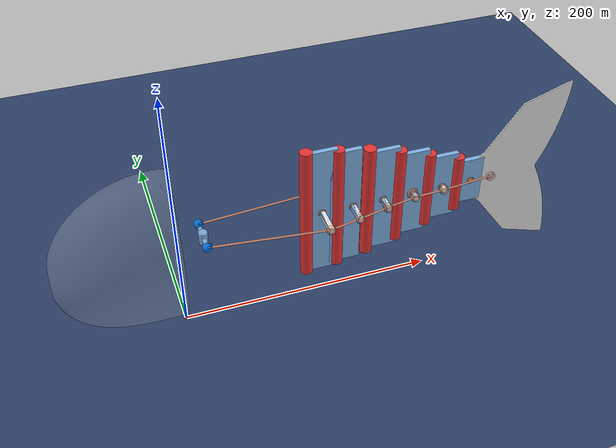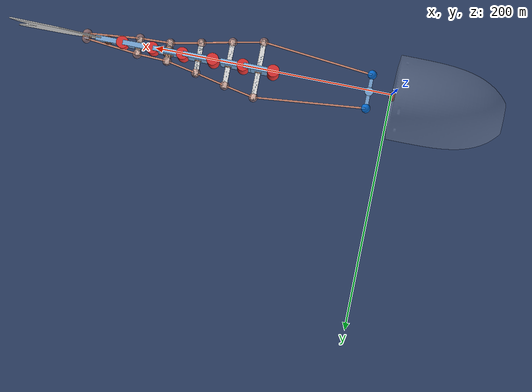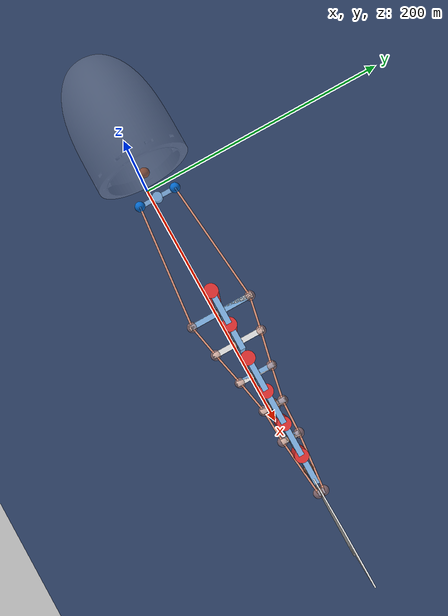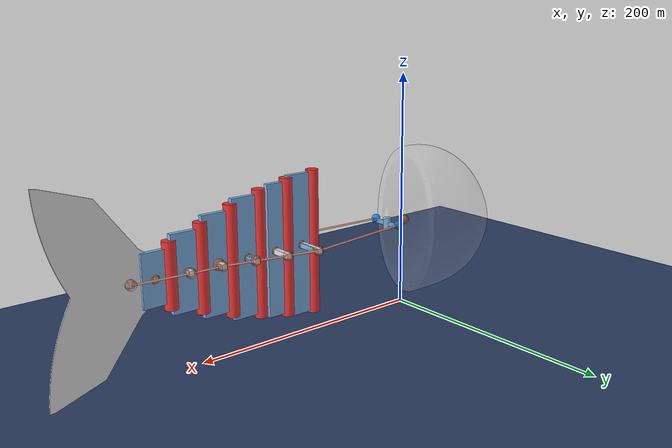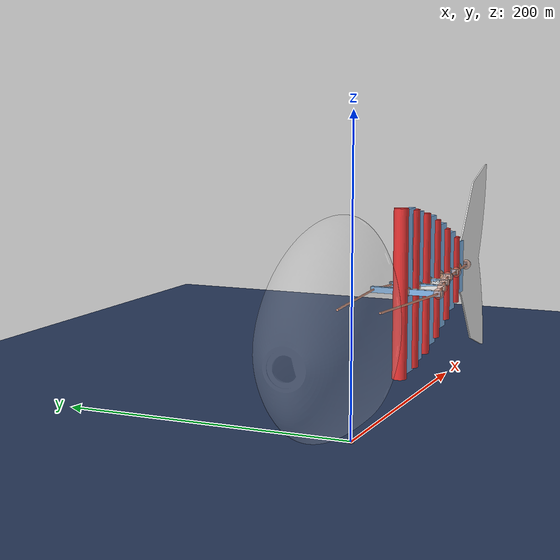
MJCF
<!--Creates a tendon fish based on Mike Yan Michelis' design.-->
<!-- Builds a life-sized fish-->
<!--As of now, the forces aren't super accurate to real life -as well as the masses- so that will be the next step, along with making the simulation progress faster-->

<mujoco model="tendonFish">
<option gravity="0 0 0" density="1000" viscosity="0.0013" integrator="implicitfast" timestep="0.001" iterations="100" solver="Newton" tolerance="1e-15" ls_tolerance="1e-9" noslip_tolerance="1e-9" o_solimp="0 0.01 0.01 0.1 2">
        <!--Prev timestep was .001-->
        <flag contact="enable"/>
    </option>

    <visual>
        <global offheight="2160" offwidth="3840"/>
        <rgba haze=".3 .3 .3 1"/>
    </visual>

    <asset>
        <texture type="skybox" builtin="gradient" rgb1="0.6 0.6 0.6" rgb2="0 0 0" width="512" height="512"/>
        <texture name="texplane" type="2d" builtin="checker" rgb1=".15 .2 .35" rgb2=".2 .3 .45" width="512" height="512" mark="cross" markrgb=".8 .8 .8"/>
        <material name="matplane" reflectance="0.3" texture="texplane" texrepeat="10 10" texuniform="true"/>
        <mesh name="tailMesh" file="C:\Users\15405\OneDrive\Desktop\Career\ETHZ\ETHZ Work\mujoco-3.3.2-windows-x86_64\model\mesh\tailV2.STL" scale="1 1 1" />
        <mesh name="headMesh" file="C:\Users\15405\OneDrive\Desktop\Career\ETHZ\ETHZ Work\mujoco-3.3.2-windows-x86_64\model\mesh\headExternal.STL" scale="1 -1 1" />
        <mesh name="planetaryGearBox" file="C:\Users\15405\OneDrive\Desktop\Career\ETHZ\ETHZ Work\mujoco-3.3.2-windows-x86_64\model\mesh\sunGear.STL" scale="1 1 1" />

        <material name="acrylic" rgba=".9 .9 .9 0.2"/>
        <material name="alu" reflectance="0.9" specular="0.9" shininess="0.9" rgba=".7 .7 .7 1"/>
        <material name="marker" rgba=".9 .4 .1 .5"/>
        <!--density="1240" maybe change back the objects with PLA to alu or acrylic-->
    </asset>

    <!--Play with different tendon widths-->
    <default>
        <joint type="hinge" pos="0 0 0" axis="0 0 1" range="-80 80" stiffness="1" damping="0.1"/>
        <!--originally stifness was .65 damping was 0-->
        <geom fluidcoef="0.1 0.1 0.1 2.0 1.0" condim="1"/>
        <tendon width=".75" rgba=".9 .6 .5 1" stiffness="5" damping="1"/>
        <!-- tendon prev stiffness=20 and damp=10-->
    </default>

    <worldbody>
        <camera name="fixed" pos="0.4 -1.2 1.2" xyaxes="1 0 0 0 1 1"/>
        <camera name="fixedTop" pos="-0.75 0 1.5" xyaxes="0 -1 0 1 0 0.75"/>
        <camera name="fixedDiag" pos="0.75 -1 1" xyaxes="0.8 0.6 0 -0.4 0.5 0.75"/>
        <camera pos="0.625 -0.592 0.720" xyaxes="0.758 0.653 -0.000 -0.468 0.544 0.697"/>

        <geom name="floor" pos="0 0 -0.2" size="0 0 1" type="plane" material="matplane"/>
        <geom name="ceiling" pos="0 0 0.2" size="0 0 1" zaxis="0 0 -1" type="plane" rgba=".7 .1 .1 0"/>
        <light directional="true" diffuse=".8 .8 .8" specular=".2 .2 .2" pos="0 0 5" dir="0 0 -1"/>

        <body pos="0 0 0">
            <joint name="headX" pos="0 0 0" type="slide" axis="1 0 0" stiffness="0" damping="0"/>
            <site name="COM" pos="0 0 0" size="2" material="marker"/>
            <geom name="head_mesh" type="mesh" mesh="headMesh" pos="0 -37.5 145" material="acrylic" density="11.8" fluidshape="ellipsoid" quat="0 0 0.7071 0.7071" contype="1" conaffinity="1" />

            <site name="marker0" pos="0 3.5 75" size="3.75" material="marker"/>

            <body pos="20 3.25 75" name="motor">
                <!-- Slide joint along x-axis with limits -->
                <joint name="motor_rotate" type="hinge" axis="0 0 1" pos="0 0 0" limited="false" stiffness="0" damping="0"/>
                <!-- Rotating body similar to the gearbox in the fish -->
                <geom name="motorSlider" type="cylinder" pos="0 0 0" size="3.5 5" rgba="0.59 0.8 1 .8" mass=".05" contype="1" conaffinity="1" />
                <geom name="motorRods" type="box" pos="0 0 0" size="1.5 14 1.5" rgba="0.59 0.8 1 .8" mass=".05" contype="1" conaffinity="1" density="1250"/>
                <site name="bodyLeft" pos="0 -14 1.5" size="3.75" rgba="0.031 0.509 0.96 .8"/>
                <site name="bodyRight" pos="0 14 1.5" size="3.75" rgba="0.031 0.509 0.96 .8"/>
            </body>

            <!--6 different bodies resemble the 6 connection points of the fish tail-->
            <body pos="100 3.25 0" name="firstPeg">
                <geom name="joint0" type="cylinder" pos="0 0 75" size="5 58" rgba=".9 .2 .2 1" mass="0" contype="0" conaffinity="0"/>
                <joint name="joint0"/>
                <geom name="joint0-tail0" type="box" pos="12 0 75" size="2 25 2" rgba=".9 .9 .9 1" mass="0.001" fluidshape="ellipsoid" contype="0" conaffinity="0"/>
                <geom name="tail0" type="box" pos="12 0 75" size="12.5 2 56.5" rgba=".5 .7 .9 1" mass=".01" fluidshape="ellipsoid" contype="0" conaffinity="0"/>
                <site name="marker4" pos="12 0 75" size="3.75" material="marker"/>

                <geom name="tail0left" type="box" pos="12 12.5 75" size="2 12.5 2" rgba=".5 .7 .9 1" mass=".01" fluidshape="ellipsoid" contype="0" conaffinity="0"/>
                <geom name="tail0right" type="box" pos="12 -12.5 75" size="2 12.5 2" rgba=".5 .7 .9 1" mass="0.01" fluidshape="ellipsoid" contype="0" conaffinity="0"/>
                <site name="tail0left" pos="12 -23 75" size="3.75" rgba=".9 .6 .5 .5"/>
                <site name="tail0right" pos="12 23 75" size="3.75" rgba=".9 .6 .5 .5"/>

                <body pos="25 0 0" name="secondPeg">
                    <geom name="joint1" type="cylinder" pos="0 0 75" size="5 55" rgba=".9 .2 .2 1" mass="0" contype="0" conaffinity="0"/>
                    <joint name="joint1"/>
                    <geom name="joint1-tail1" type="box" pos="12 0 75" size="2 20 2" rgba=".9 .9 .9 1" mass="0.001" fluidshape="ellipsoid" contype="0" conaffinity="0"/>
                    <geom name="tail1" type="box" pos="6 0 75" size="12.5 2 52.5" rgba=".5 .7 .9 1" mass="0.01" fluidshape="ellipsoid" contype="0" conaffinity="0"/>
                    <site name="marker5" pos="12 0 75" size="3.75" material="marker"/>

                    <geom name="tail1left" type="box" pos="12 10 75" size="2 10 2" rgba=".5 .7 .9 1" mass="0.01" fluidshape="ellipsoid" contype="0" conaffinity="0"/>
                    <geom name="tail1right" type="box" pos="12 -10 75" size="2 10 2" rgba=".5 .7 .9 1" mass="0.01" fluidshape="ellipsoid" contype="0" conaffinity="0"/>
                    <site name="tail1left" pos="12 -18 75" size="3.75" rgba=".9 .6 .5 .5"/>
                    <site name="tail1right" pos="12 18 75" size="3.75" rgba=".9 .6 .5 .5"/>

                    <body pos="25 0 0" name="thirdPeg">
                        <geom name="joint2" type="cylinder" pos=" 0 0 75" size="5 50" rgba=".9 .2 .2 1" mass="0" contype="0" conaffinity="0"/>
                        <joint name="joint2"/>
                        <geom name="joint2-tail2" type="box" pos="12 0 75" size="2 15 2" rgba=".9 .9 .9 1" mass="0.001" fluidshape="ellipsoid" contype="0" conaffinity="0"/>
                        <geom name="tail2" type="box" pos="12 0 75" size="12.5 2 46.5" rgba=".5 .7 .9 1" mass="0.01" fluidshape="ellipsoid" contype="0" conaffinity="0"/>
                        <site name="marker6" pos="12 0 75" size="3.75" material="marker"/>

                        <geom name="tail2left" type="box" pos="12 7.5 75" size="2 7.5 2" rgba=".5 .7 .9 1" mass="0.01" fluidshape="ellipsoid" contype="0" conaffinity="0"/>
                        <geom name="tail2right" type="box" pos="12 -7.5 75" size="2 7.5 2" rgba=".5 .7 .9 1" mass="0.01" fluidshape="ellipsoid" contype="0" conaffinity="0"/>
                        <site name="tail2left" pos="12 -12.5 75" size="3.75" rgba=".9 .6 .5 .5"/>
                        <site name="tail2right" pos="12 12.5 75" size="3.75" rgba=".9 .6 .5 .5"/>

                        <body pos="25 0 0" name="fourthPeg">
                            <geom name="joint3" type="cylinder" pos=" 0 0 75" size="5 43" rgba=".9 .2 .2 1" mass="0" contype="0" conaffinity="0"/>
                            <joint name="joint3"/>
                            <geom name="joint3-tail3" type="box" pos="12 0 75" size="2 10 2" rgba=".9 .9 .9 1" mass="0.001" fluidshape="ellipsoid" contype="0" conaffinity="0"/>
                            <geom name="tail3" type="box" pos="12 0 75" size="12.5 2 38.5" rgba=".5 .7 .9 1" mass="0.01" fluidshape="ellipsoid" contype="0" conaffinity="0"/>
                            <site name="marker7" pos="12 0 75" size="5" material="marker"/>

                            <geom name="tail3left" type="box" pos="12 5 75" size="2 5 2" rgba=".5 .7 .9 1" mass="0.01" fluidshape="ellipsoid" contype="0" conaffinity="0"/>
                            <geom name="tail3right" type="box" pos="12 -5 75" size="2 5 2" rgba=".5 .7 .9 1" mass="0.01" fluidshape="ellipsoid" contype="0" conaffinity="0"/>
                            <site name="tail3left" pos="12 -7.5 75" size="3.75" rgba=".9 .6 .5 .5"/>
                            <site name="tail3right" pos="12 7.5 75" size="3.75" rgba=".9 .6 .5 .5"/>

                            <body pos="25 0 0" name="fifthPeg">
                                <geom name="joint4" type="cylinder" pos=" 0 0 75" size="5 34" rgba=".9 .2 .2 1" mass="0" contype="0" conaffinity="0"/>
                                <joint name="joint4"/>
                                <geom name="joint4-tail4" type="box" pos="12 0 75" size="2 7.5 2" rgba=".9 .9 .9 1" mass="0.001" fluidshape="ellipsoid" contype="0" conaffinity="0"/>
                                <geom name="tail4" type="box" pos="12 0 75" size="12.5 2 29.5" rgba=".5 .7 .9 1" mass="0.01" fluidshape="ellipsoid" contype="0" conaffinity="0"/>
                                <site name="marker8" pos="12 0 75" size="3.75" material="marker"/>

                                <geom name="tail4left" type="box" pos="12 3.75 75" size="2 3.75 2" rgba=".5 .7 .9 1" mass="0.01" fluidshape="ellipsoid" contype="0" conaffinity="0"/>
                                <geom name="tail4right" type="box" pos="12 -3.75 75" size="2 3.75 2" rgba=".5 .7 .9 1" mass="0.01" fluidshape="ellipsoid" contype="0" conaffinity="0"/>
                                <site name="tail4left" pos="12 -6.5 75" size="3.75" rgba=".9 .6 .5 .5"/>
                                <site name="tail4right" pos="12 6.5 75" size="3.75" rgba=".9 .6 .5 .5"/>

                                <!--Apparently there is no tail4-joint5 geometry-->
                                <body pos="25 0 0" name="sixthPeg">
                                    <geom name="joint5" type="cylinder" pos=" 0 0 75" size="5 25" rgba=".9 .2 .2 1" mass="0" contype="0" conaffinity="0"/>
                                    <joint name="joint5"/>
                                    <geom name="joint5-tail5" type="box" pos="12 0 75" size="2 2.5 2" rgba=".9 .9 .9 1" mass="0.001" fluidshape="ellipsoid" contype="0" conaffinity="0"/>
                                    <geom name="tail5" type="box" pos="12 0 75" size="10 2 20" rgba=".5 .7 .9 1" mass="0.01" fluidshape="ellipsoid" contype="0" conaffinity="0"/>
                                    <site name="marker9" pos="12 0 75" size="3.75" material="marker"/>

                                    <geom name="tail5left" type="box" pos="30 1.25 75" size="2 1.25 2" rgba=".5 .7 .9 1" mass="0.01" fluidshape="ellipsoid" contype="0" conaffinity="0"/>
                                    <geom name="tail5right" type="box" pos="30 -1.25 75" size="2 1.25 2" rgba=".5 .7 .9 1" mass="0.01" fluidshape="ellipsoid" contype="0" conaffinity="0"/>
                                    <site name="tail5left" pos="30 -2.15 75" size="3.75" rgba=".9 .6 .5 .5"/>
                                    <site name="tail5right" pos="30 2.15 75" size="3.75" rgba=".9 .6 .5 .5"/>

                                    <geom name="finTail" type="mesh"  mesh="tailMesh" pos="-140 0 0" quat="0.7071 0.7071 0 0" rgba=".9 .9 .9 1" mass="0.001" fluidshape="ellipsoid" contype="0" conaffinity="0"/>
                                    <site name="marker10" pos="30 0 75" size="3.75" material="marker"/>
                                </body>
                            </body>
                        </body>
                    </body>
                </body>
            </body>
        </body>
    </worldbody>

    <tendon>
         <spatial name="tendonLeft" range="237.24 237.3 "> <!-- stiffness="1e5" damping="0"-->
            <site site="bodyLeft"/>
            <site site="tail0left"/>
            <site site="tail1left"/>
            <site site="tail2left"/>
            <site site="tail3left"/>
            <site site="tail4left"/>
            <site site="tail5left"/>

        </spatial>

         <spatial name="tendonRight" range="237.24 237.3 ">
            <site site="bodyRight"/>
            <site site="tail0right"/>
            <site site="tail1right"/>
            <site site="tail2right"/>
            <site site="tail3right"/>
            <site site="tail4right"/>
            <site site="tail5right"/>
        </spatial>
    </tendon>

    <actuator>
        <!-- Position actuator for direct position control. Need to work on increasing the speed of the simulation-->
        <general name="left_act" tendon="tendonLeft" ctrllimited="true" gear="5" ctrlrange="-50 50"/>
        <general name="right_act" tendon="tendonRight" ctrllimited="true" gear="5" ctrlrange="-50 50"/>
    </actuator>

</mujoco>
